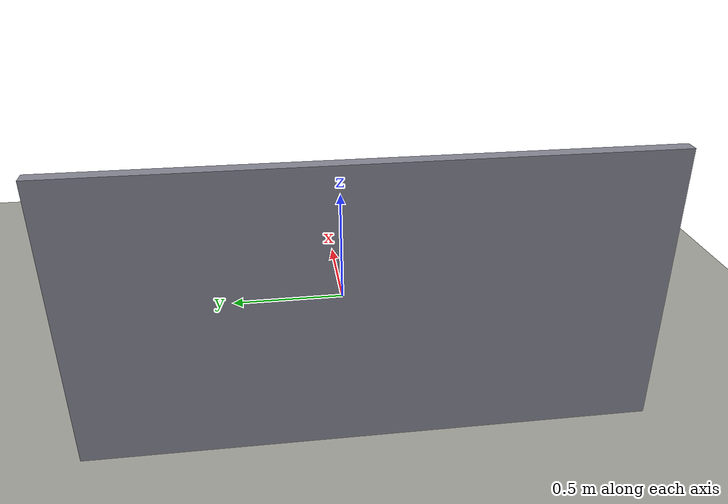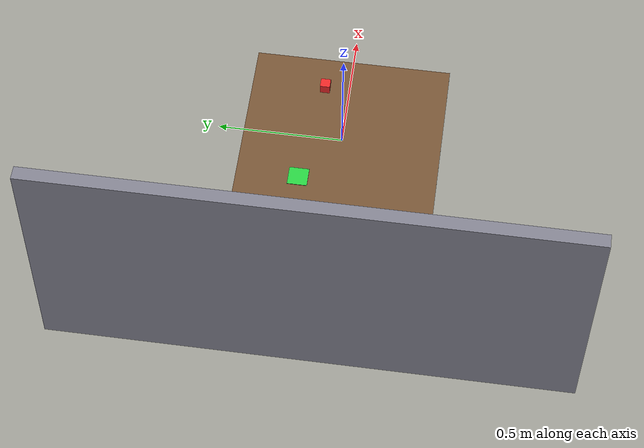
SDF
<?xml version="1.0" ?>
<sdf version="1.9">
  <world name="pick_and_place">

    <!-- Physics -->
    <physics name="default_physics" type="ode">
      <max_step_size>0.004</max_step_size>
      <real_time_factor>1.0</real_time_factor>
    </physics>

    <!-- Sun -->
    <light type="directional" name="sun">
      <cast_shadows>true</cast_shadows>
      <pose>0 0 10 0 0 0</pose>
      <diffuse>0.9 0.9 0.85 1</diffuse>
      <specular>0.3 0.3 0.3 1</specular>
      <attenuation>
        <range>1000</range>
        <constant>0.9</constant>
        <linear>0.01</linear>
        <quadratic>0.001</quadratic>
      </attenuation>
      <direction>-0.5 0.3 -0.9</direction>
    </light>

    <!-- Fill light -->
    <light type="directional" name="fill_light">
      <cast_shadows>false</cast_shadows>
      <pose>0 0 8 0 0 0</pose>
      <diffuse>0.4 0.4 0.5 1</diffuse>
      <specular>0.1 0.1 0.1 1</specular>
      <direction>0.5 -0.3 -0.7</direction>
    </light>

    <!-- Point light near robot -->
    <light type="point" name="warm_point">
      <cast_shadows>false</cast_shadows>
      <pose>1.0 0.5 1.5 0 0 0</pose>
      <diffuse>0.6 0.5 0.3 1</diffuse>
      <specular>0.1 0.1 0.05 1</specular>
      <attenuation>
        <range>5</range>
        <constant>0.5</constant>
        <linear>0.2</linear>
        <quadratic>0.05</quadratic>
      </attenuation>
    </light>

    <!-- Ground plane -->
    <model name="ground_plane">
      <static>true</static>
      <link name="link">
        <collision name="collision">
          <geometry>
            <plane><normal>0 0 1</normal><size>20 20</size></plane>
          </geometry>
        </collision>
        <visual name="visual">
          <geometry>
            <plane><normal>0 0 1</normal><size>20 20</size></plane>
          </geometry>
          <material>
            <ambient>0.55 0.55 0.52 1</ambient>
            <diffuse>0.6 0.6 0.57 1</diffuse>
          </material>
        </visual>
      </link>
    </model>

    <!-- Table under robot -->
    <model name="table">
      <static>true</static>
      <pose>0 0 -0.02 0 0 0</pose>
      <link name="link">
        <visual name="visual">
          <geometry><box><size>0.8 0.8 0.04</size></box></geometry>
          <material>
            <ambient>0.35 0.25 0.15 1</ambient>
            <diffuse>0.45 0.32 0.2 1</diffuse>
          </material>
        </visual>
        <collision name="collision">
          <geometry><box><size>0.8 0.8 0.04</size></box></geometry>
        </collision>
      </link>
    </model>

    <!--  TARGET CUBE — red, 4cm, at a reachable position             -->
    <!--  Position: x=0.25, y=0.10, z=0.02 (on the table surface)    -->
    <!--  This is within the MyCobot 320 workspace (~0.32m reach)     -->
    <model name="target_cube">
      <static>true</static>
      <pose>0.25 0.10 0.02 0 0 0</pose>
      <link name="link">
        <visual name="visual">
          <geometry><box><size>0.04 0.04 0.04</size></box></geometry>
          <material>
            <ambient>0.8 0.1 0.1 1</ambient>
            <diffuse>0.9 0.15 0.15 1</diffuse>
            <specular>0.4 0.1 0.1 1</specular>
          </material>
        </visual>
        <collision name="collision">
          <geometry><box><size>0.04 0.04 0.04</size></box></geometry>
        </collision>
        <inertial>
          <mass>0.05</mass>
        </inertial>
      </link>
    </model>

    <!-- Drop zone (green area) — where to place the cube -->
    <model name="drop_zone">
      <static>true</static>
      <pose>-0.20 0.15 0.001 0 0 0</pose>
      <link name="link">
        <visual name="visual">
          <geometry><box><size>0.08 0.08 0.002</size></box></geometry>
          <material>
            <ambient>0.1 0.7 0.2 1</ambient>
            <diffuse>0.15 0.8 0.25 1</diffuse>
          </material>
        </visual>
      </link>
    </model>

    <!-- Back wall for visual reference -->
    <model name="back_wall">
      <static>true</static>
      <pose>-1.0 0 0.5 0 0 0</pose>
      <link name="link">
        <visual name="visual">
          <geometry><box><size>0.05 2.0 1.0</size></box></geometry>
          <material>
            <ambient>0.45 0.45 0.50 1</ambient>
            <diffuse>0.5 0.5 0.55 1</diffuse>
          </material>
        </visual>
      </link>
    </model>

  </world>
</sdf>
